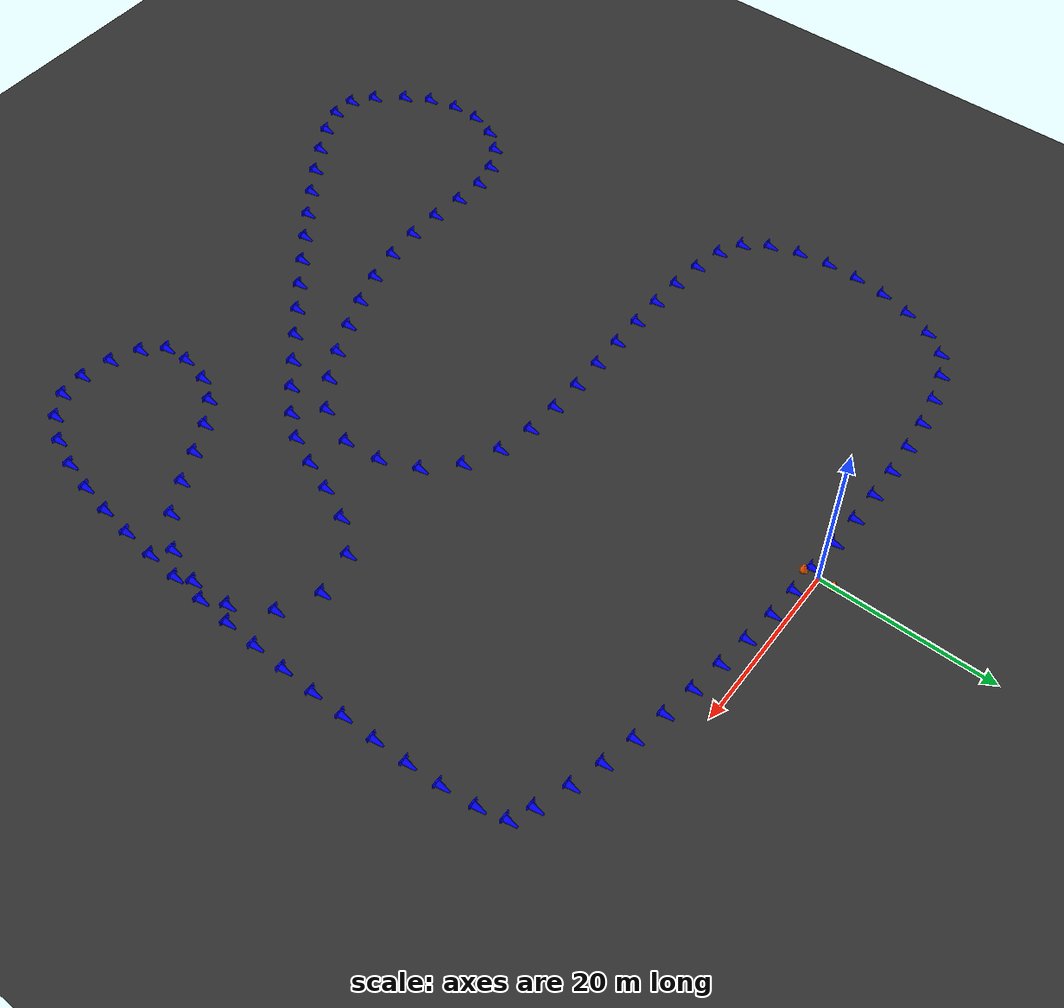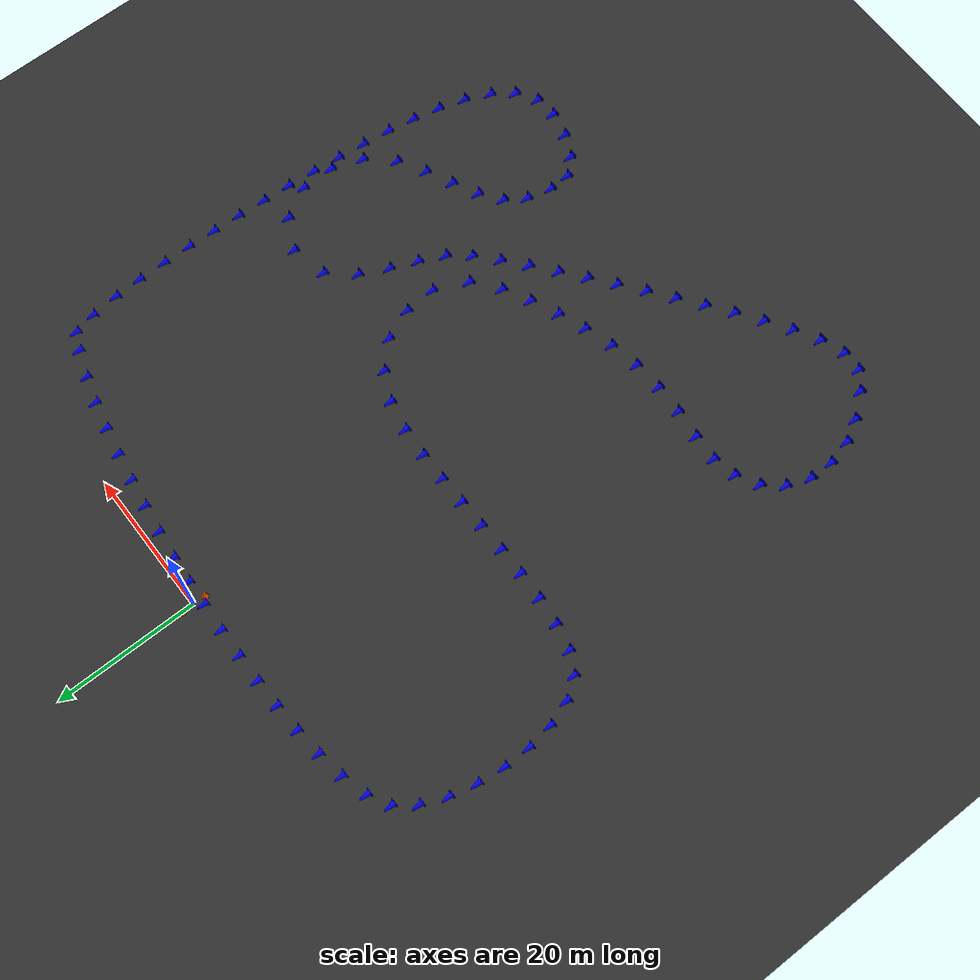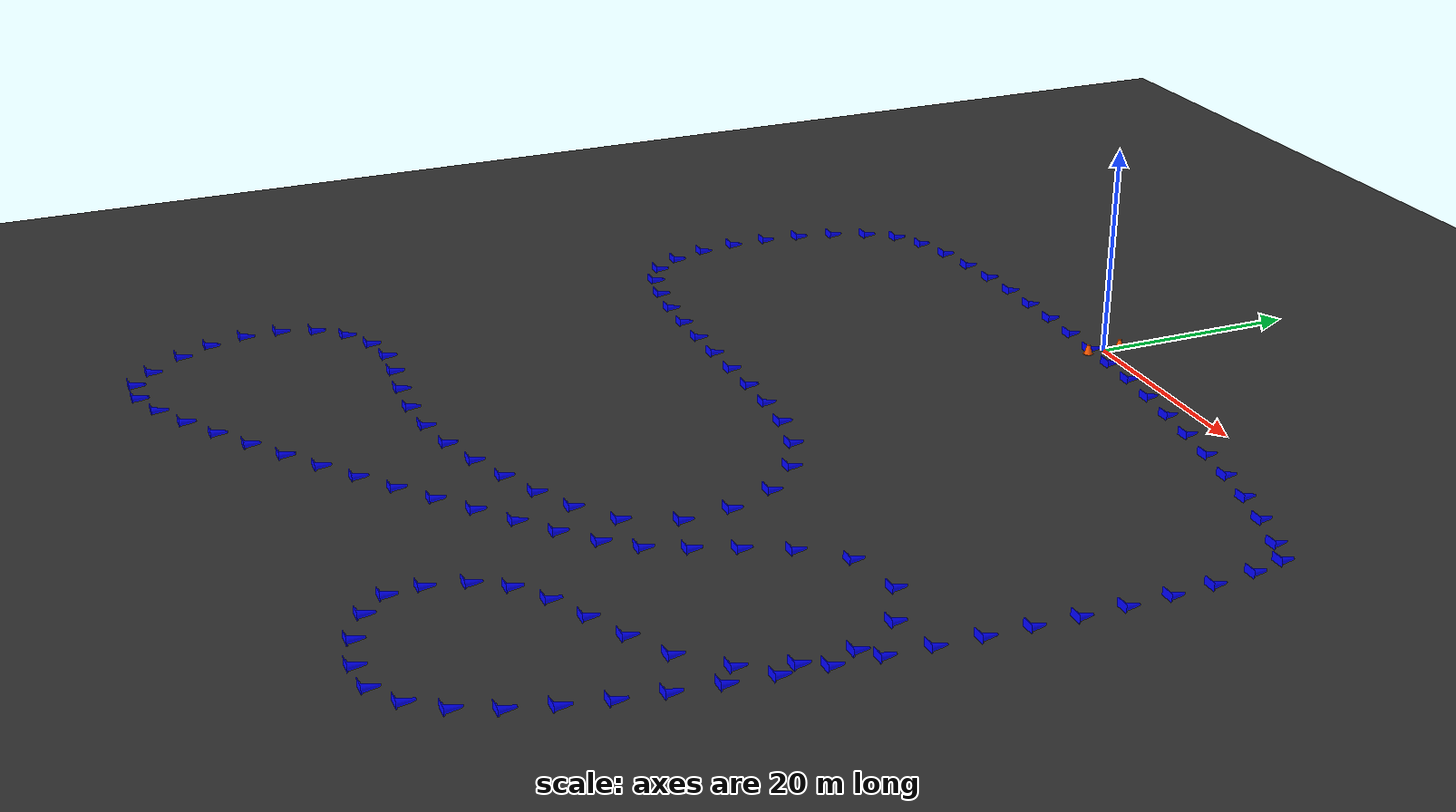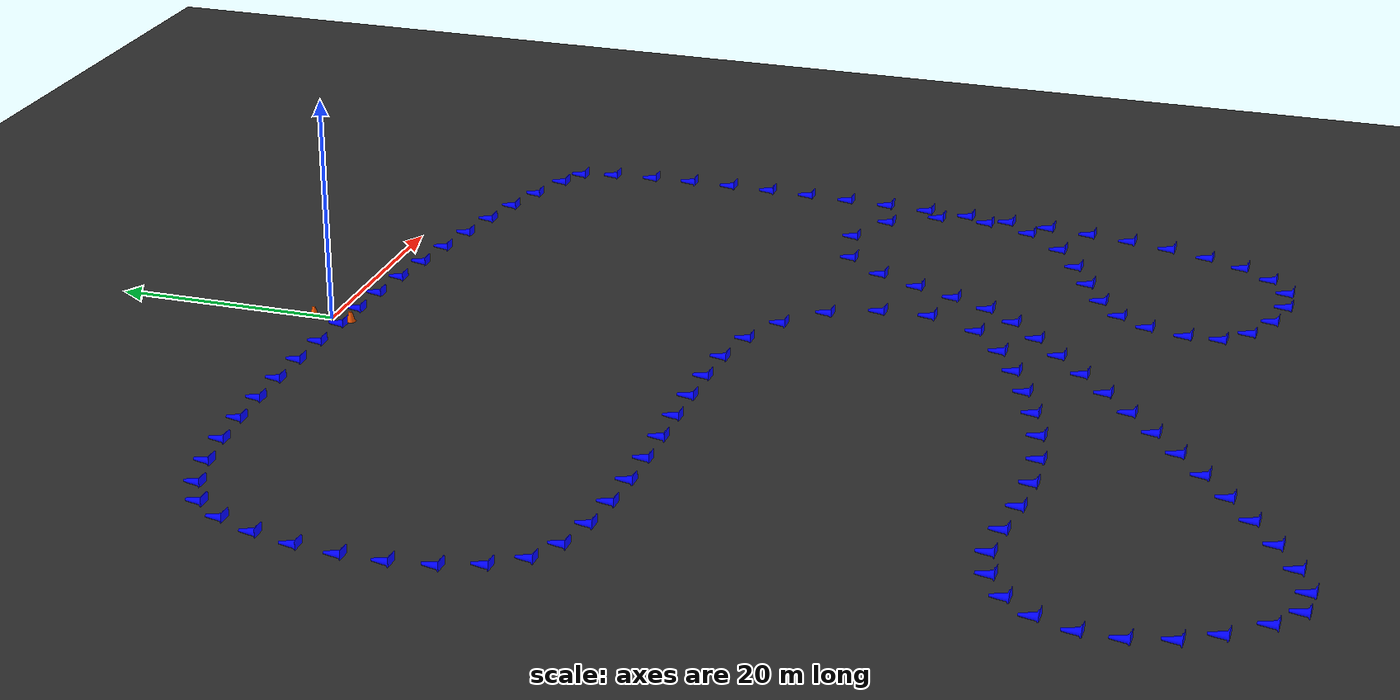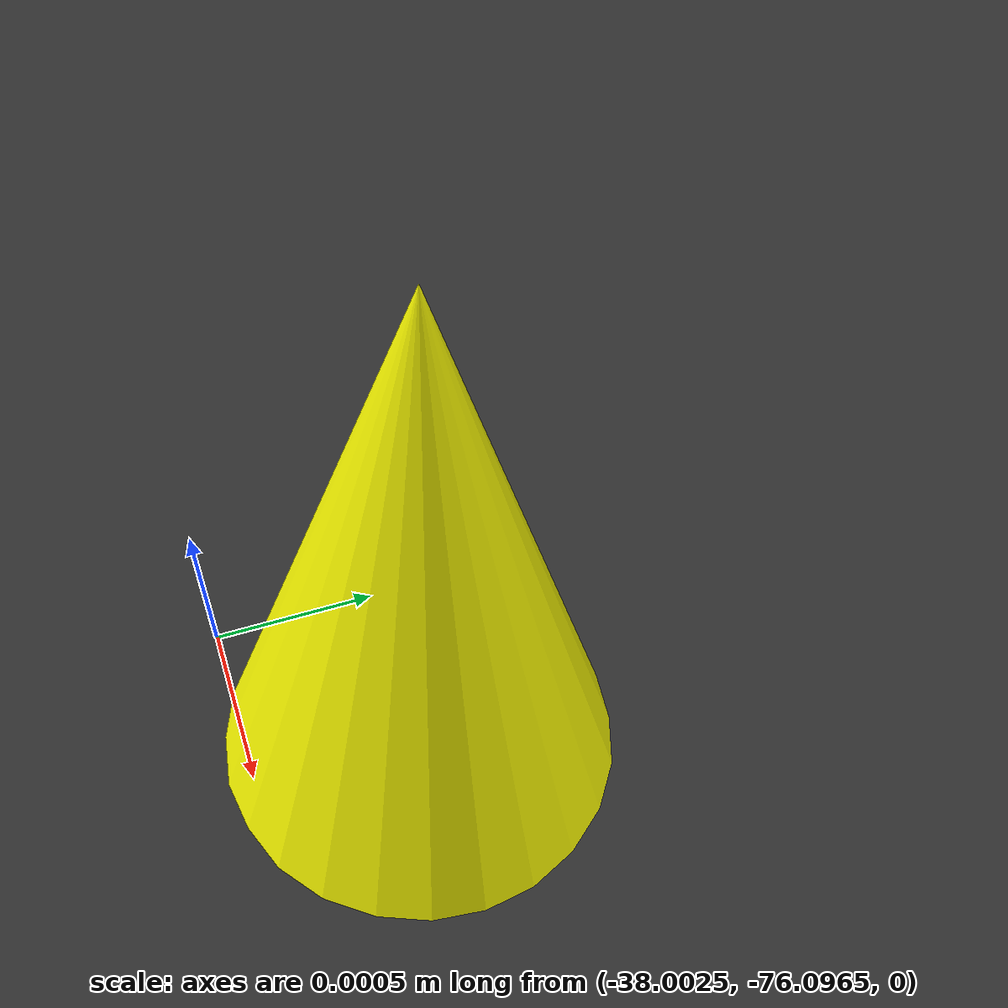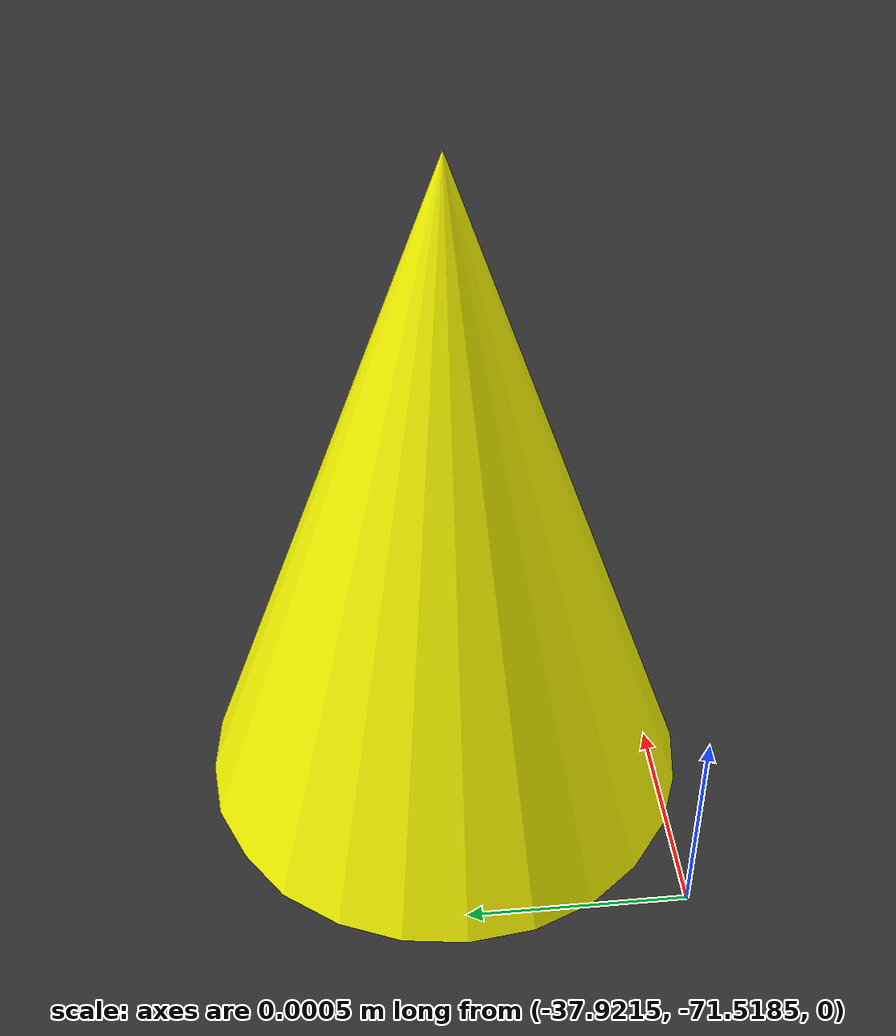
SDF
<sdf version="1.7">
 <world name="generated_world">
  <scene><sky><clouds><speed>12</speed></clouds></sky><grid>false</grid><shadows>1</shadows></scene>
  <physics type="ode">
   <max_step_size>0.001</max_step_size>
   <real_time_update_rate>1000</real_time_update_rate>
  </physics>
  <plugin filename="gz-sim-physics-system" name="gz::sim::systems::Physics"/>
  <plugin filename="gz-sim-user-commands-system" name="gz::sim::systems::UserCommands"/>
  <plugin filename="gz-sim-scene-broadcaster-system" name="gz::sim::systems::SceneBroadcaster"/>
  <plugin filename="gz-sim-contact-system" name="gz::sim::systems::Contact"/>
  <light name="sun" type="directional">
   <pose>0 0 10 0 0 0</pose>
   <diffuse>1 1 1 1</diffuse>
   <specular>0.2 0.2 0.2 1</specular>
   <direction>-0.5 0.2 -1</direction>
   <attenuation>
    <range>300</range>
    <constant>0.9</constant>
    <linear>0.01</linear>
    <quadratic>0.001</quadratic>
   </attenuation>
  </light>
  <model name="asphalt_ground">
   <static>1</static>
   <link name="link">
    <collision name="collision">
     <geometry><plane><normal>0 0 1</normal><size>300 300</size></plane></geometry>
     <surface><friction><ode><mu>100</mu><mu2>50</mu2></ode></friction></surface>
    </collision>
    <visual name="visual">
     <geometry><plane><normal>0 0 1</normal><size>300 300</size></plane></geometry>
     <material>
      <ambient>0.2 0.2 0.2 1</ambient>
      <diffuse>0.2 0.2 0.2 1</diffuse>
      <specular>0.1 0.1 0.1 1</specular>
     </material>
    </visual>
   </link>
  </model>
  <include><uri>model://cone_yellow</uri><name>cone_yellow_001</name><pose>2.761 1.924 0 0 0 0</pose></include>
  <include><uri>model://cone_yellow</uri><name>cone_yellow_002</name><pose>6.880 1.650 0 0 0 0</pose></include>
  <include><uri>model://cone_yellow</uri><name>cone_yellow_003</name><pose>10.928 1.195 0 0 0 0</pose></include>
  <include><uri>model://cone_yellow</uri><name>cone_yellow_004</name><pose>14.926 0.665 0 0 0 0</pose></include>
  <include><uri>model://cone_yellow</uri><name>cone_yellow_005</name><pose>18.923 0.068 0 0 0 0</pose></include>
  <include>
   <uri>model://cone_yellow</uri>
   <name>cone_yellow_006</name>
   <pose>22.911 -0.598 0 0 0 0</pose>
  </include>
  <include>
   <uri>model://cone_yellow</uri>
   <name>cone_yellow_007</name>
   <pose>26.898 -1.348 0 0 0 0</pose>
  </include>
  <include>
   <uri>model://cone_yellow</uri>
   <name>cone_yellow_008</name>
   <pose>30.904 -2.231 0 0 0 0</pose>
  </include>
  <include>
   <uri>model://cone_yellow</uri>
   <name>cone_yellow_009</name>
   <pose>34.934 -3.383 0 0 0 0</pose>
  </include>
  <include>
   <uri>model://cone_yellow</uri>
   <name>cone_yellow_010</name>
   <pose>38.603 -4.675 0 0 0 0</pose>
  </include>
  <include>
   <uri>model://cone_yellow</uri>
   <name>cone_yellow_011</name>
   <pose>42.947 -7.273 0 0 0 0</pose>
  </include>
  <include>
   <uri>model://cone_yellow</uri>
   <name>cone_yellow_012</name>
   <pose>44.191 -11.782 0 0 0 0</pose>
  </include>
  <include>
   <uri>model://cone_yellow</uri>
   <name>cone_yellow_013</name>
   <pose>44.596 -15.865 0 0 0 0</pose>
  </include>
  <include>
   <uri>model://cone_yellow</uri>
   <name>cone_yellow_014</name>
   <pose>44.782 -19.944 0 0 0 0</pose>
  </include>
  <include>
   <uri>model://cone_yellow</uri>
   <name>cone_yellow_015</name>
   <pose>44.815 -24.026 0 0 0 0</pose>
  </include>
  <include>
   <uri>model://cone_yellow</uri>
   <name>cone_yellow_016</name>
   <pose>44.764 -28.075 0 0 0 0</pose>
  </include>
  <include>
   <uri>model://cone_yellow</uri>
   <name>cone_yellow_017</name>
   <pose>44.654 -32.074 0 0 0 0</pose>
  </include>
  <include>
   <uri>model://cone_yellow</uri>
   <name>cone_yellow_018</name>
   <pose>44.495 -36.110 0 0 0 0</pose>
  </include>
  <include>
   <uri>model://cone_yellow</uri>
   <name>cone_yellow_019</name>
   <pose>44.293 -40.142 0 0 0 0</pose>
  </include>
  <include>
   <uri>model://cone_yellow</uri>
   <name>cone_yellow_020</name>
   <pose>44.051 -44.158 0 0 0 0</pose>
  </include>
  <include>
   <uri>model://cone_yellow</uri>
   <name>cone_yellow_021</name>
   <pose>43.765 -48.195 0 0 0 0</pose>
  </include>
  <include>
   <uri>model://cone_yellow</uri>
   <name>cone_yellow_022</name>
   <pose>43.433 -52.212 0 0 0 0</pose>
  </include>
  <include>
   <uri>model://cone_yellow</uri>
   <name>cone_yellow_023</name>
   <pose>43.047 -56.184 0 0 0 0</pose>
  </include>
  <include>
   <uri>model://cone_yellow</uri>
   <name>cone_yellow_024</name>
   <pose>42.575 -60.228 0 0 0 0</pose>
  </include>
  <include>
   <uri>model://cone_yellow</uri>
   <name>cone_yellow_025</name>
   <pose>41.968 -64.260 0 0 0 0</pose>
  </include>
  <include>
   <uri>model://cone_yellow</uri>
   <name>cone_yellow_026</name>
   <pose>41.121 -68.283 0 0 0 0</pose>
  </include>
  <include>
   <uri>model://cone_yellow</uri>
   <name>cone_yellow_027</name>
   <pose>39.939 -72.283 0 0 0 0</pose>
  </include>
  <include>
   <uri>model://cone_yellow</uri>
   <name>cone_yellow_028</name>
   <pose>38.219 -76.198 0 0 0 0</pose>
  </include>
  <include>
   <uri>model://cone_yellow</uri>
   <name>cone_yellow_029</name>
   <pose>35.596 -79.795 0 0 0 0</pose>
  </include>
  <include>
   <uri>model://cone_yellow</uri>
   <name>cone_yellow_030</name>
   <pose>31.688 -82.389 0 0 0 0</pose>
  </include>
  <include>
   <uri>model://cone_yellow</uri>
   <name>cone_yellow_031</name>
   <pose>26.962 -82.867 0 0 0 0</pose>
  </include>
  <include>
   <uri>model://cone_yellow</uri>
   <name>cone_yellow_032</name>
   <pose>22.644 -81.945 0 0 0 0</pose>
  </include>
  <include>
   <uri>model://cone_yellow</uri>
   <name>cone_yellow_033</name>
   <pose>18.611 -79.985 0 0 0 0</pose>
  </include>
  <include>
   <uri>model://cone_yellow</uri>
   <name>cone_yellow_034</name>
   <pose>15.362 -76.356 0 0 0 0</pose>
  </include>
  <include>
   <uri>model://cone_yellow</uri>
   <name>cone_yellow_035</name>
   <pose>14.923 -71.463 0 0 0 0</pose>
  </include>
  <include>
   <uri>model://cone_yellow</uri>
   <name>cone_yellow_036</name>
   <pose>15.968 -67.164 0 0 0 0</pose>
  </include>
  <include>
   <uri>model://cone_yellow</uri>
   <name>cone_yellow_037</name>
   <pose>18.516 -63.280 0 0 0 0</pose>
  </include>
  <include>
   <uri>model://cone_yellow</uri>
   <name>cone_yellow_038</name>
   <pose>22.022 -60.603 0 0 0 0</pose>
  </include>
  <include>
   <uri>model://cone_yellow</uri>
   <name>cone_yellow_039</name>
   <pose>25.768 -58.654 0 0 0 0</pose>
  </include>
  <include>
   <uri>model://cone_yellow</uri>
   <name>cone_yellow_040</name>
   <pose>29.315 -56.917 0 0 0 0</pose>
  </include>
  <include>
   <uri>model://cone_yellow</uri>
   <name>cone_yellow_041</name>
   <pose>32.524 -55.046 0 0 0 0</pose>
  </include>
  <include>
   <uri>model://cone_yellow</uri>
   <name>cone_yellow_042</name>
   <pose>34.642 -52.705 0 0 0 0</pose>
  </include>
  <include>
   <uri>model://cone_yellow</uri>
   <name>cone_yellow_043</name>
   <pose>35.715 -49.459 0 0 0 0</pose>
  </include>
  <include>
   <uri>model://cone_yellow</uri>
   <name>cone_yellow_044</name>
   <pose>35.675 -46.175 0 0 0 0</pose>
  </include>
  <include>
   <uri>model://cone_yellow</uri>
   <name>cone_yellow_045</name>
   <pose>34.235 -43.657 0 0 0 0</pose>
  </include>
  <include>
   <uri>model://cone_yellow</uri>
   <name>cone_yellow_046</name>
   <pose>31.493 -42.244 0 0 0 0</pose>
  </include>
  <include>
   <uri>model://cone_yellow</uri>
   <name>cone_yellow_047</name>
   <pose>29.130 -42.763 0 0 0 0</pose>
  </include>
  <include>
   <uri>model://cone_yellow</uri>
   <name>cone_yellow_048</name>
   <pose>27.058 -45.266 0 0 0 0</pose>
  </include>
  <include>
   <uri>model://cone_yellow</uri>
   <name>cone_yellow_049</name>
   <pose>25.432 -48.667 0 0 0 0</pose>
  </include>
  <include>
   <uri>model://cone_yellow</uri>
   <name>cone_yellow_050</name>
   <pose>23.900 -52.437 0 0 0 0</pose>
  </include>
  <include>
   <uri>model://cone_yellow</uri>
   <name>cone_yellow_051</name>
   <pose>22.120 -56.180 0 0 0 0</pose>
  </include>
  <include>
   <uri>model://cone_yellow</uri>
   <name>cone_yellow_052</name>
   <pose>19.377 -59.659 0 0 0 0</pose>
  </include>
  <include>
   <uri>model://cone_yellow</uri>
   <name>cone_yellow_053</name>
   <pose>16.353 -62.458 0 0 0 0</pose>
  </include>
  <include>
   <uri>model://cone_yellow</uri>
   <name>cone_yellow_054</name>
   <pose>13.326 -65.009 0 0 0 0</pose>
  </include>
  <include>
   <uri>model://cone_yellow</uri>
   <name>cone_yellow_055</name>
   <pose>10.204 -67.577 0 0 0 0</pose>
  </include>
  <include>
   <uri>model://cone_yellow</uri>
   <name>cone_yellow_056</name>
   <pose>7.073 -70.117 0 0 0 0</pose>
  </include>
  <include>
   <uri>model://cone_yellow</uri>
   <name>cone_yellow_057</name>
   <pose>3.919 -72.638 0 0 0 0</pose>
  </include>
  <include>
   <uri>model://cone_yellow</uri>
   <name>cone_yellow_058</name>
   <pose>0.744 -75.135 0 0 0 0</pose>
  </include>
  <include>
   <uri>model://cone_yellow</uri>
   <name>cone_yellow_059</name>
   <pose>-2.441 -77.594 0 0 0 0</pose>
  </include>
  <include>
   <uri>model://cone_yellow</uri>
   <name>cone_yellow_060</name>
   <pose>-5.661 -80.024 0 0 0 0</pose>
  </include>
  <include>
   <uri>model://cone_yellow</uri>
   <name>cone_yellow_061</name>
   <pose>-8.933 -82.420 0 0 0 0</pose>
  </include>
  <include>
   <uri>model://cone_yellow</uri>
   <name>cone_yellow_062</name>
   <pose>-12.261 -84.758 0 0 0 0</pose>
  </include>
  <include>
   <uri>model://cone_yellow</uri>
   <name>cone_yellow_063</name>
   <pose>-15.681 -87.005 0 0 0 0</pose>
  </include>
  <include>
   <uri>model://cone_yellow</uri>
   <name>cone_yellow_064</name>
   <pose>-19.301 -89.083 0 0 0 0</pose>
  </include>
  <include>
   <uri>model://cone_yellow</uri>
   <name>cone_yellow_065</name>
   <pose>-23.407 -90.602 0 0 0 0</pose>
  </include>
  <include>
   <uri>model://cone_yellow</uri>
   <name>cone_yellow_066</name>
   <pose>-28.295 -90.356 0 0 0 0</pose>
  </include>
  <include>
   <uri>model://cone_yellow</uri>
   <name>cone_yellow_067</name>
   <pose>-32.146 -87.442 0 0 0 0</pose>
  </include>
  <include>
   <uri>model://cone_yellow</uri>
   <name>cone_yellow_068</name>
   <pose>-34.649 -84.342 0 0 0 0</pose>
  </include>
  <include>
   <uri>model://cone_yellow</uri>
   <name>cone_yellow_069</name>
   <pose>-36.914 -80.366 0 0 0 0</pose>
  </include>
  <include>
   <uri>model://cone_yellow</uri>
   <name>cone_yellow_070</name>
   <pose>-38.002 -76.096 0 0 0 0</pose>
  </include>
  <include>
   <uri>model://cone_yellow</uri>
   <name>cone_yellow_071</name>
   <pose>-37.921 -71.518 0 0 0 0</pose>
  </include>
  <include>
   <uri>model://cone_yellow</uri>
   <name>cone_yellow_072</name>
   <pose>-36.378 -67.309 0 0 0 0</pose>
  </include>
  <include>
   <uri>model://cone_yellow</uri>
   <name>cone_yellow_073</name>
   <pose>-33.432 -63.729 0 0 0 0</pose>
  </include>
  <include>
   <uri>model://cone_yellow</uri>
   <name>cone_yellow_074</name>
   <pose>-29.502 -61.479 0 0 0 0</pose>
  </include>
  <include>
   <uri>model://cone_yellow</uri>
   <name>cone_yellow_075</name>
   <pose>-25.038 -60.527 0 0 0 0</pose>
  </include>
  <include>
   <uri>model://cone_yellow</uri>
   <name>cone_yellow_076</name>
   <pose>-20.809 -60.752 0 0 0 0</pose>
  </include>
  <include>
   <uri>model://cone_yellow</uri>
   <name>cone_yellow_077</name>
   <pose>-16.850 -61.157 0 0 0 0</pose>
  </include>
  <include>
   <uri>model://cone_yellow</uri>
   <name>cone_yellow_078</name>
   <pose>-13.039 -61.313 0 0 0 0</pose>
  </include>
  <include>
   <uri>model://cone_yellow</uri>
   <name>cone_yellow_079</name>
   <pose>-9.249 -61.059 0 0 0 0</pose>
  </include>
  <include>
   <uri>model://cone_yellow</uri>
   <name>cone_yellow_080</name>
   <pose>-5.512 -60.344 0 0 0 0</pose>
  </include>
  <include>
   <uri>model://cone_yellow</uri>
   <name>cone_yellow_081</name>
   <pose>-1.868 -59.193 0 0 0 0</pose>
  </include>
  <include>
   <uri>model://cone_yellow</uri>
   <name>cone_yellow_082</name>
   <pose>1.815 -57.752 0 0 0 0</pose>
  </include>
  <include>
   <uri>model://cone_yellow</uri>
   <name>cone_yellow_083</name>
   <pose>5.404 -56.159 0 0 0 0</pose>
  </include>
  <include>
   <uri>model://cone_yellow</uri>
   <name>cone_yellow_084</name>
   <pose>8.707 -54.369 0 0 0 0</pose>
  </include>
  <include>
   <uri>model://cone_yellow</uri>
   <name>cone_yellow_085</name>
   <pose>11.473 -52.183 0 0 0 0</pose>
  </include>
  <include>
   <uri>model://cone_yellow</uri>
   <name>cone_yellow_086</name>
   <pose>12.616 -49.714 0 0 0 0</pose>
  </include>
  <include>
   <uri>model://cone_yellow</uri>
   <name>cone_yellow_087</name>
   <pose>12.390 -46.165 0 0 0 0</pose>
  </include>
  <include>
   <uri>model://cone_yellow</uri>
   <name>cone_yellow_088</name>
   <pose>11.167 -43.124 0 0 0 0</pose>
  </include>
  <include>
   <uri>model://cone_yellow</uri>
   <name>cone_yellow_089</name>
   <pose>8.809 -40.829 0 0 0 0</pose>
  </include>
  <include>
   <uri>model://cone_yellow</uri>
   <name>cone_yellow_090</name>
   <pose>5.638 -39.322 0 0 0 0</pose>
  </include>
  <include>
   <uri>model://cone_yellow</uri>
   <name>cone_yellow_091</name>
   <pose>2.107 -38.620 0 0 0 0</pose>
  </include>
  <include>
   <uri>model://cone_yellow</uri>
   <name>cone_yellow_092</name>
   <pose>-1.759 -38.395 0 0 0 0</pose>
  </include>
  <include>
   <uri>model://cone_yellow</uri>
   <name>cone_yellow_093</name>
   <pose>-5.719 -38.368 0 0 0 0</pose>
  </include>
  <include>
   <uri>model://cone_yellow</uri>
   <name>cone_yellow_094</name>
   <pose>-9.680 -38.427 0 0 0 0</pose>
  </include>
  <include>
   <uri>model://cone_yellow</uri>
   <name>cone_yellow_095</name>
   <pose>-13.697 -38.509 0 0 0 0</pose>
  </include>
  <include>
   <uri>model://cone_yellow</uri>
   <name>cone_yellow_096</name>
   <pose>-17.742 -38.565 0 0 0 0</pose>
  </include>
  <include>
   <uri>model://cone_yellow</uri>
   <name>cone_yellow_097</name>
   <pose>-21.788 -38.544 0 0 0 0</pose>
  </include>
  <include>
   <uri>model://cone_yellow</uri>
   <name>cone_yellow_098</name>
   <pose>-25.859 -38.383 0 0 0 0</pose>
  </include>
  <include>
   <uri>model://cone_yellow</uri>
   <name>cone_yellow_099</name>
   <pose>-30.007 -37.963 0 0 0 0</pose>
  </include>
  <include>
   <uri>model://cone_yellow</uri>
   <name>cone_yellow_100</name>
   <pose>-34.192 -37.029 0 0 0 0</pose>
  </include>
  <include>
   <uri>model://cone_yellow</uri>
   <name>cone_yellow_101</name>
   <pose>-38.274 -34.764 0 0 0 0</pose>
  </include>
  <include>
   <uri>model://cone_yellow</uri>
   <name>cone_yellow_102</name>
   <pose>-40.952 -31.007 0 0 0 0</pose>
  </include>
  <include>
   <uri>model://cone_yellow</uri>
   <name>cone_yellow_103</name>
   <pose>-42.357 -26.837 0 0 0 0</pose>
  </include>
  <include>
   <uri>model://cone_yellow</uri>
   <name>cone_yellow_104</name>
   <pose>-42.960 -22.602 0 0 0 0</pose>
  </include>
  <include>
   <uri>model://cone_yellow</uri>
   <name>cone_yellow_105</name>
   <pose>-42.989 -18.390 0 0 0 0</pose>
  </include>
  <include>
   <uri>model://cone_yellow</uri>
   <name>cone_yellow_106</name>
   <pose>-42.524 -14.204 0 0 0 0</pose>
  </include>
  <include>
   <uri>model://cone_yellow</uri>
   <name>cone_yellow_107</name>
   <pose>-41.541 -10.072 0 0 0 0</pose>
  </include>
  <include>
   <uri>model://cone_yellow</uri>
   <name>cone_yellow_108</name>
   <pose>-39.899 -6.063 0 0 0 0</pose>
  </include>
  <include>
   <uri>model://cone_yellow</uri>
   <name>cone_yellow_109</name>
   <pose>-37.194 -2.432 0 0 0 0</pose>
  </include>
  <include>
   <uri>model://cone_yellow</uri>
   <name>cone_yellow_110</name>
   <pose>-33.211 -0.172 0 0 0 0</pose>
  </include>
  <include>
   <uri>model://cone_yellow</uri>
   <name>cone_yellow_111</name>
   <pose>-29.096 0.976 0 0 0 0</pose>
  </include>
  <include>
   <uri>model://cone_yellow</uri>
   <name>cone_yellow_112</name>
   <pose>-24.987 1.649 0 0 0 0</pose>
  </include>
  <include>
   <uri>model://cone_yellow</uri>
   <name>cone_yellow_113</name>
   <pose>-20.891 2.052 0 0 0 0</pose>
  </include>
  <include>
   <uri>model://cone_yellow</uri>
   <name>cone_yellow_114</name>
   <pose>-16.812 2.274 0 0 0 0</pose>
  </include>
  <include>
   <uri>model://cone_yellow</uri>
   <name>cone_yellow_115</name>
   <pose>-12.758 2.363 0 0 0 0</pose>
  </include>
  <include><uri>model://cone_yellow</uri><name>cone_yellow_116</name><pose>-8.718 2.346 0 0 0 0</pose></include>
  <include><uri>model://cone_yellow</uri><name>cone_yellow_117</name><pose>-4.642 2.238 0 0 0 0</pose></include>
  <include><uri>model://cone_yellow</uri><name>cone_yellow_118</name><pose>-0.558 2.046 0 0 0 0</pose></include>
  <include><uri>model://cone_blue</uri><name>cone_blue_001</name><pose>2.769 -1.576 0 0 0 0</pose></include>
  <include><uri>model://cone_blue</uri><name>cone_blue_002</name><pose>6.537 -1.834 0 0 0 0</pose></include>
  <include><uri>model://cone_blue</uri><name>cone_blue_003</name><pose>10.499 -2.278 0 0 0 0</pose></include>
  <include><uri>model://cone_blue</uri><name>cone_blue_004</name><pose>14.437 -2.801 0 0 0 0</pose></include>
  <include><uri>model://cone_blue</uri><name>cone_blue_005</name><pose>18.377 -3.389 0 0 0 0</pose></include>
  <include><uri>model://cone_blue</uri><name>cone_blue_006</name><pose>22.303 -4.044 0 0 0 0</pose></include>
  <include><uri>model://cone_blue</uri><name>cone_blue_007</name><pose>26.206 -4.779 0 0 0 0</pose></include>
  <include><uri>model://cone_blue</uri><name>cone_blue_008</name><pose>30.076 -5.632 0 0 0 0</pose></include>
  <include><uri>model://cone_blue</uri><name>cone_blue_009</name><pose>33.778 -6.687 0 0 0 0</pose></include>
  <include><uri>model://cone_blue</uri><name>cone_blue_010</name><pose>37.548 -8.012 0 0 0 0</pose></include>
  <include><uri>model://cone_blue</uri><name>cone_blue_011</name><pose>39.990 -9.145 0 0 0 0</pose></include>
  <include><uri>model://cone_blue</uri><name>cone_blue_012</name><pose>40.718 -12.218 0 0 0 0</pose></include>
  <include><uri>model://cone_blue</uri><name>cone_blue_013</name><pose>41.106 -16.136 0 0 0 0</pose></include>
  <include><uri>model://cone_blue</uri><name>cone_blue_014</name><pose>41.283 -20.023 0 0 0 0</pose></include>
  <include><uri>model://cone_blue</uri><name>cone_blue_015</name><pose>41.315 -24.013 0 0 0 0</pose></include>
  <include><uri>model://cone_blue</uri><name>cone_blue_016</name><pose>41.265 -28.002 0 0 0 0</pose></include>
  <include><uri>model://cone_blue</uri><name>cone_blue_017</name><pose>41.156 -31.956 0 0 0 0</pose></include>
  <include><uri>model://cone_blue</uri><name>cone_blue_018</name><pose>40.999 -35.953 0 0 0 0</pose></include>
  <include><uri>model://cone_blue</uri><name>cone_blue_019</name><pose>40.799 -39.949 0 0 0 0</pose></include>
  <include><uri>model://cone_blue</uri><name>cone_blue_020</name><pose>40.559 -43.930 0 0 0 0</pose></include>
  <include><uri>model://cone_blue</uri><name>cone_blue_021</name><pose>40.275 -47.928 0 0 0 0</pose></include>
  <include><uri>model://cone_blue</uri><name>cone_blue_022</name><pose>39.947 -51.900 0 0 0 0</pose></include>
  <include><uri>model://cone_blue</uri><name>cone_blue_023</name><pose>39.567 -55.817 0 0 0 0</pose></include>
  <include><uri>model://cone_blue</uri><name>cone_blue_024</name><pose>39.104 -59.776 0 0 0 0</pose></include>
  <include><uri>model://cone_blue</uri><name>cone_blue_025</name><pose>38.521 -63.648 0 0 0 0</pose></include>
  <include><uri>model://cone_blue</uri><name>cone_blue_026</name><pose>37.723 -67.445 0 0 0 0</pose></include>
  <include><uri>model://cone_blue</uri><name>cone_blue_027</name><pose>36.639 -71.116 0 0 0 0</pose></include>
  <include><uri>model://cone_blue</uri><name>cone_blue_028</name><pose>35.150 -74.516 0 0 0 0</pose></include>
  <include><uri>model://cone_blue</uri><name>cone_blue_029</name><pose>33.112 -77.329 0 0 0 0</pose></include>
  <include><uri>model://cone_blue</uri><name>cone_blue_030</name><pose>30.410 -79.131 0 0 0 0</pose></include>
  <include><uri>model://cone_blue</uri><name>cone_blue_031</name><pose>27.285 -79.382 0 0 0 0</pose></include>
  <include><uri>model://cone_blue</uri><name>cone_blue_032</name><pose>23.757 -78.626 0 0 0 0</pose></include>
  <include><uri>model://cone_blue</uri><name>cone_blue_033</name><pose>20.588 -77.097 0 0 0 0</pose></include>
  <include><uri>model://cone_blue</uri><name>cone_blue_034</name><pose>18.537 -74.883 0 0 0 0</pose></include>
  <include><uri>model://cone_blue</uri><name>cone_blue_035</name><pose>18.394 -71.912 0 0 0 0</pose></include>
  <include><uri>model://cone_blue</uri><name>cone_blue_036</name><pose>19.216 -68.468 0 0 0 0</pose></include>
  <include><uri>model://cone_blue</uri><name>cone_blue_037</name><pose>21.010 -65.736 0 0 0 0</pose></include>
  <include><uri>model://cone_blue</uri><name>cone_blue_038</name><pose>23.823 -63.604 0 0 0 0</pose></include>
  <include><uri>model://cone_blue</uri><name>cone_blue_039</name><pose>27.285 -61.808 0 0 0 0</pose></include>
  <include><uri>model://cone_blue</uri><name>cone_blue_040</name><pose>30.906 -60.034 0 0 0 0</pose></include>
  <include><uri>model://cone_blue</uri><name>cone_blue_041</name><pose>34.577 -57.881 0 0 0 0</pose></include>
  <include><uri>model://cone_blue</uri><name>cone_blue_042</name><pose>37.727 -54.359 0 0 0 0</pose></include>
  <include><uri>model://cone_blue</uri><name>cone_blue_043</name><pose>39.166 -50.041 0 0 0 0</pose></include>
  <include><uri>model://cone_blue</uri><name>cone_blue_044</name><pose>39.080 -45.367 0 0 0 0</pose></include>
  <include><uri>model://cone_blue</uri><name>cone_blue_045</name><pose>36.601 -41.078 0 0 0 0</pose></include>
  <include><uri>model://cone_blue</uri><name>cone_blue_046</name><pose>32.207 -38.818 0 0 0 0</pose></include>
  <include><uri>model://cone_blue</uri><name>cone_blue_047</name><pose>27.080 -39.926 0 0 0 0</pose></include>
  <include><uri>model://cone_blue</uri><name>cone_blue_048</name><pose>24.037 -43.497 0 0 0 0</pose></include>
  <include><uri>model://cone_blue</uri><name>cone_blue_049</name><pose>22.195 -47.336 0 0 0 0</pose></include>
  <include><uri>model://cone_blue</uri><name>cone_blue_050</name><pose>20.712 -50.990 0 0 0 0</pose></include>
  <include><uri>model://cone_blue</uri><name>cone_blue_051</name><pose>19.086 -54.435 0 0 0 0</pose></include>
  <include><uri>model://cone_blue</uri><name>cone_blue_052</name><pose>16.883 -57.203 0 0 0 0</pose></include>
  <include><uri>model://cone_blue</uri><name>cone_blue_053</name><pose>14.059 -59.815 0 0 0 0</pose></include>
  <include><uri>model://cone_blue</uri><name>cone_blue_054</name><pose>11.092 -62.314 0 0 0 0</pose></include>
  <include><uri>model://cone_blue</uri><name>cone_blue_055</name><pose>7.990 -64.866 0 0 0 0</pose></include>
  <include><uri>model://cone_blue</uri><name>cone_blue_056</name><pose>4.878 -67.391 0 0 0 0</pose></include>
  <include><uri>model://cone_blue</uri><name>cone_blue_057</name><pose>1.744 -69.895 0 0 0 0</pose></include>
  <include><uri>model://cone_blue</uri><name>cone_blue_058</name><pose>-1.408 -72.375 0 0 0 0</pose></include>
  <include><uri>model://cone_blue</uri><name>cone_blue_059</name><pose>-4.565 -74.813 0 0 0 0</pose></include>
  <include><uri>model://cone_blue</uri><name>cone_blue_060</name><pose>-7.751 -77.217 0 0 0 0</pose></include>
  <include><uri>model://cone_blue</uri><name>cone_blue_061</name><pose>-10.976 -79.579 0 0 0 0</pose></include>
  <include><uri>model://cone_blue</uri><name>cone_blue_062</name><pose>-14.235 -81.868 0 0 0 0</pose></include>
  <include><uri>model://cone_blue</uri><name>cone_blue_063</name><pose>-17.538 -84.038 0 0 0 0</pose></include>
  <include><uri>model://cone_blue</uri><name>cone_blue_064</name><pose>-20.878 -85.959 0 0 0 0</pose></include>
  <include><uri>model://cone_blue</uri><name>cone_blue_065</name><pose>-24.138 -87.179 0 0 0 0</pose></include>
  <include><uri>model://cone_blue</uri><name>cone_blue_066</name><pose>-27.066 -87.078 0 0 0 0</pose></include>
  <include><uri>model://cone_blue</uri><name>cone_blue_067</name><pose>-29.475 -85.181 0 0 0 0</pose></include>
  <include><uri>model://cone_blue</uri><name>cone_blue_068</name><pose>-31.983 -82.074 0 0 0 0</pose></include>
  <include><uri>model://cone_blue</uri><name>cone_blue_069</name><pose>-33.646 -79.112 0 0 0 0</pose></include>
  <include><uri>model://cone_blue</uri><name>cone_blue_070</name><pose>-34.533 -75.631 0 0 0 0</pose></include>
  <include><uri>model://cone_blue</uri><name>cone_blue_071</name><pose>-34.495 -72.234 0 0 0 0</pose></include>
  <include><uri>model://cone_blue</uri><name>cone_blue_072</name><pose>-33.303 -68.980 0 0 0 0</pose></include>
  <include><uri>model://cone_blue</uri><name>cone_blue_073</name><pose>-31.210 -66.433 0 0 0 0</pose></include>
  <include><uri>model://cone_blue</uri><name>cone_blue_074</name><pose>-28.231 -64.740 0 0 0 0</pose></include>
  <include><uri>model://cone_blue</uri><name>cone_blue_075</name><pose>-24.916 -64.025 0 0 0 0</pose></include>
  <include><uri>model://cone_blue</uri><name>cone_blue_076</name><pose>-21.173 -64.233 0 0 0 0</pose></include>
  <include><uri>model://cone_blue</uri><name>cone_blue_077</name><pose>-17.139 -64.645 0 0 0 0</pose></include>
  <include><uri>model://cone_blue</uri><name>cone_blue_078</name><pose>-13.009 -64.813 0 0 0 0</pose></include>
  <include><uri>model://cone_blue</uri><name>cone_blue_079</name><pose>-8.804 -64.531 0 0 0 0</pose></include>
  <include><uri>model://cone_blue</uri><name>cone_blue_080</name><pose>-4.648 -63.736 0 0 0 0</pose></include>
  <include><uri>model://cone_blue</uri><name>cone_blue_081</name><pose>-0.645 -62.472 0 0 0 0</pose></include>
  <include><uri>model://cone_blue</uri><name>cone_blue_082</name><pose>3.151 -60.987 0 0 0 0</pose></include>
  <include><uri>model://cone_blue</uri><name>cone_blue_083</name><pose>6.924 -59.311 0 0 0 0</pose></include>
  <include><uri>model://cone_blue</uri><name>cone_blue_084</name><pose>10.560 -57.338 0 0 0 0</pose></include>
  <include><uri>model://cone_blue</uri><name>cone_blue_085</name><pose>14.067 -54.533 0 0 0 0</pose></include>
  <include><uri>model://cone_blue</uri><name>cone_blue_086</name><pose>16.111 -49.898 0 0 0 0</pose></include>
  <include><uri>model://cone_blue</uri><name>cone_blue_087</name><pose>15.824 -45.488 0 0 0 0</pose></include>
  <include><uri>model://cone_blue</uri><name>cone_blue_088</name><pose>14.072 -41.172 0 0 0 0</pose></include>
  <include><uri>model://cone_blue</uri><name>cone_blue_089</name><pose>10.745 -37.913 0 0 0 0</pose></include>
  <include><uri>model://cone_blue</uri><name>cone_blue_090</name><pose>6.754 -36.005 0 0 0 0</pose></include>
  <include><uri>model://cone_blue</uri><name>cone_blue_091</name><pose>2.467 -35.138 0 0 0 0</pose></include>
  <include><uri>model://cone_blue</uri><name>cone_blue_092</name><pose>-1.671 -34.896 0 0 0 0</pose></include>
  <include><uri>model://cone_blue</uri><name>cone_blue_093</name><pose>-5.745 -34.869 0 0 0 0</pose></include>
  <include><uri>model://cone_blue</uri><name>cone_blue_094</name><pose>-9.749 -34.928 0 0 0 0</pose></include>
  <include><uri>model://cone_blue</uri><name>cone_blue_095</name><pose>-13.763 -35.010 0 0 0 0</pose></include>
  <include><uri>model://cone_blue</uri><name>cone_blue_096</name><pose>-17.765 -35.065 0 0 0 0</pose></include>
  <include><uri>model://cone_blue</uri><name>cone_blue_097</name><pose>-21.721 -35.045 0 0 0 0</pose></include>
  <include><uri>model://cone_blue</uri><name>cone_blue_098</name><pose>-25.634 -34.890 0 0 0 0</pose></include>
  <include><uri>model://cone_blue</uri><name>cone_blue_099</name><pose>-29.498 -34.500 0 0 0 0</pose></include>
  <include><uri>model://cone_blue</uri><name>cone_blue_100</name><pose>-33.107 -33.701 0 0 0 0</pose></include>
  <include><uri>model://cone_blue</uri><name>cone_blue_101</name><pose>-35.893 -32.199 0 0 0 0</pose></include>
  <include><uri>model://cone_blue</uri><name>cone_blue_102</name><pose>-37.793 -29.500 0 0 0 0</pose></include>
  <include><uri>model://cone_blue</uri><name>cone_blue_103</name><pose>-38.942 -26.070 0 0 0 0</pose></include>
  <include><uri>model://cone_blue</uri><name>cone_blue_104</name><pose>-39.469 -22.360 0 0 0 0</pose></include>
  <include><uri>model://cone_blue</uri><name>cone_blue_105</name><pose>-39.494 -18.575 0 0 0 0</pose></include>
  <include><uri>model://cone_blue</uri><name>cone_blue_106</name><pose>-39.074 -14.794 0 0 0 0</pose></include>
  <include><uri>model://cone_blue</uri><name>cone_blue_107</name><pose>-38.200 -11.114 0 0 0 0</pose></include>
  <include><uri>model://cone_blue</uri><name>cone_blue_108</name><pose>-36.808 -7.706 0 0 0 0</pose></include>
  <include><uri>model://cone_blue</uri><name>cone_blue_109</name><pose>-34.836 -5.019 0 0 0 0</pose></include>
  <include><uri>model://cone_blue</uri><name>cone_blue_110</name><pose>-31.993 -3.453 0 0 0 0</pose></include>
  <include><uri>model://cone_blue</uri><name>cone_blue_111</name><pose>-28.381 -2.450 0 0 0 0</pose></include>
  <include><uri>model://cone_blue</uri><name>cone_blue_112</name><pose>-24.549 -1.823 0 0 0 0</pose></include>
  <include><uri>model://cone_blue</uri><name>cone_blue_113</name><pose>-20.633 -1.438 0 0 0 0</pose></include>
  <include><uri>model://cone_blue</uri><name>cone_blue_114</name><pose>-16.684 -1.223 0 0 0 0</pose></include>
  <include><uri>model://cone_blue</uri><name>cone_blue_115</name><pose>-12.730 -1.137 0 0 0 0</pose></include>
  <include><uri>model://cone_blue</uri><name>cone_blue_116</name><pose>-8.773 -1.154 0 0 0 0</pose></include>
  <include><uri>model://cone_blue</uri><name>cone_blue_117</name><pose>-4.771 -1.259 0 0 0 0</pose></include>
  <include><uri>model://cone_blue</uri><name>cone_blue_118</name><pose>-0.759 -1.449 0 0 0 0</pose></include>
  <include>
   <uri>model://cone_orange_big</uri>
   <name>cone_orange_big_001</name>
   <pose>0.000 -1.726 0 0 0 0</pose>
  </include>
  <include>
   <uri>model://cone_orange_big</uri>
   <name>cone_orange_big_002</name>
   <pose>0.000 1.726 0 0 0 0</pose>
  </include>
 </world>
</sdf>

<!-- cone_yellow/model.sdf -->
<sdf version="1.6">
  <model name="cone_yellow">
    <static>1</static>
    <link name="link">

      <visual name="visual">
        <pose>0 0 0 0 0 0</pose>
        <geometry>
          <mesh>
            <uri>model://cone_yellow/meshes/cone.stl</uri>
            <scale>0.005 0.005 0.005</scale>
          </mesh>
        </geometry>
        <material>
          <ambient>1.0 1.0 0.0 1</ambient>
          <diffuse>1.0 1.0 0.0 1</diffuse>
        </material>
      </visual>

      <collision name="collision">
        <pose>0 0 0.15 0 0 0</pose>
        <geometry>
          <cylinder>
            <radius>0.1</radius>
            <length>0.3</length>
          </cylinder>
        </geometry>
        <surface>
          <friction>
            <ode>
              <mu>0.9</mu> <mu2>0.9</mu2> </ode>
          </friction>
        </surface>
      </collision>

      <inertial>
        <pose>0 0 0.05 0 0 0</pose>
        <mass>1</mass>
        <inertia>
          <ixx>0.01</ixx> <iyy>0.01</iyy> <izz>0.005</izz>
          <ixy>0.0</ixy> <ixz>0.0</ixz> <iyz>0.0</iyz>
        </inertia>
      </inertial>

    </link>
  </model>
</sdf>

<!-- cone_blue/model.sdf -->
<sdf version="1.6">
  <model name="cone_blue">
    <static>1</static>
    <link name="link">

      <inertial>
        <pose>0 0 0.05 0 0 0</pose> <mass>1</mass>
        <inertia>
          <ixx>0.01</ixx> <iyy>0.01</iyy> <izz>0.005</izz>
          <ixy>0.0</ixy> <ixz>0.0</ixz> <iyz>0.0</iyz>
        </inertia>
      </inertial>

      <collision name="collision">
        <pose>0 0 0.15 0 0 0</pose>
        <geometry>
          <cylinder>
            <radius>0.1</radius>
            <length>0.3</length>
          </cylinder>
        </geometry>
      </collision>

      <visual name="visual">
        <pose>0 0 0 0 0 0</pose>
        <geometry>
          <mesh>
            <uri>model://cone_blue/meshes/cone.stl</uri>
            <scale>0.005 0.005 0.005</scale>
          </mesh>
        </geometry>
        <material>
          <ambient>0.0 0.0 1.0 1</ambient>
          <diffuse>0.0 0.0 1.0 1</diffuse>
        </material>
      </visual>

    </link>
  </model>
</sdf>

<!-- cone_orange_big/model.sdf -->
<sdf version="1.6">
  <model name="cone_orange_big">
    <static>1</static>
    <link name="link">
      <visual name="visual">
        <geometry>
          <mesh>
            <uri>model://cone_orange_big/meshes/cone.stl</uri>
            <scale>0.0112 0.0112 0.0112</scale>
          </mesh>
        </geometry>
        <material>
          <ambient>1.0 0.35 0.0 1</ambient>
	  <diffuse>1.0 0.35 0.0 1</diffuse>
        </material>
      </visual>
      <collision name="collision">
        <geometry>
          <mesh>
            <uri>model://cone_orange_big/meshes/cone.stl</uri>
            <scale>0.0112 0.0112 0.0112</scale>
          </mesh>
        </geometry>
      </collision>
      <inertial>
        <mass>0.1</mass>
        <inertia>
          <ixx>0.0001</ixx>
          <iyy>0.0001</iyy>
          <izz>0.0001</izz>
          <ixy>0.0</ixy>
          <ixz>0.0</ixz>
          <iyz>0.0</iyz>
        </inertia>
      </inertial>
    </link>
  </model>
</sdf>
